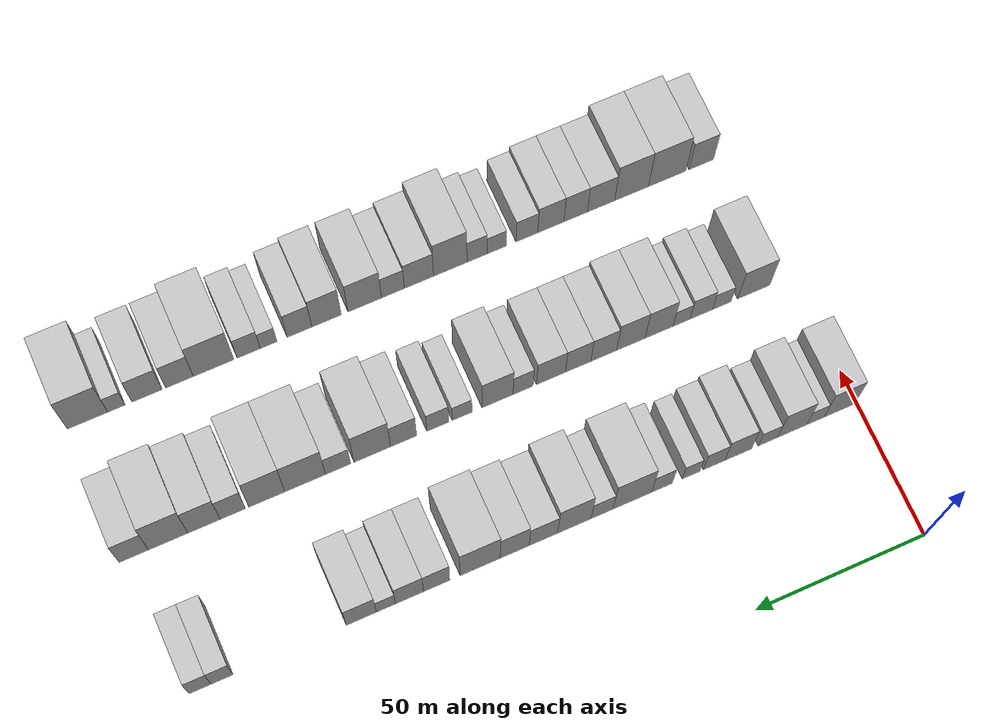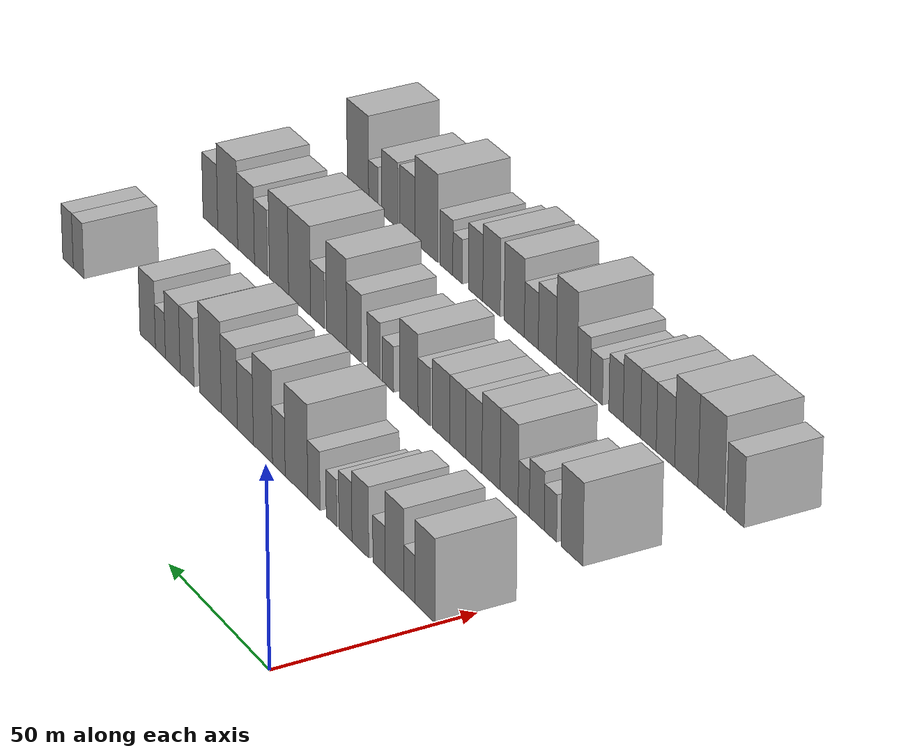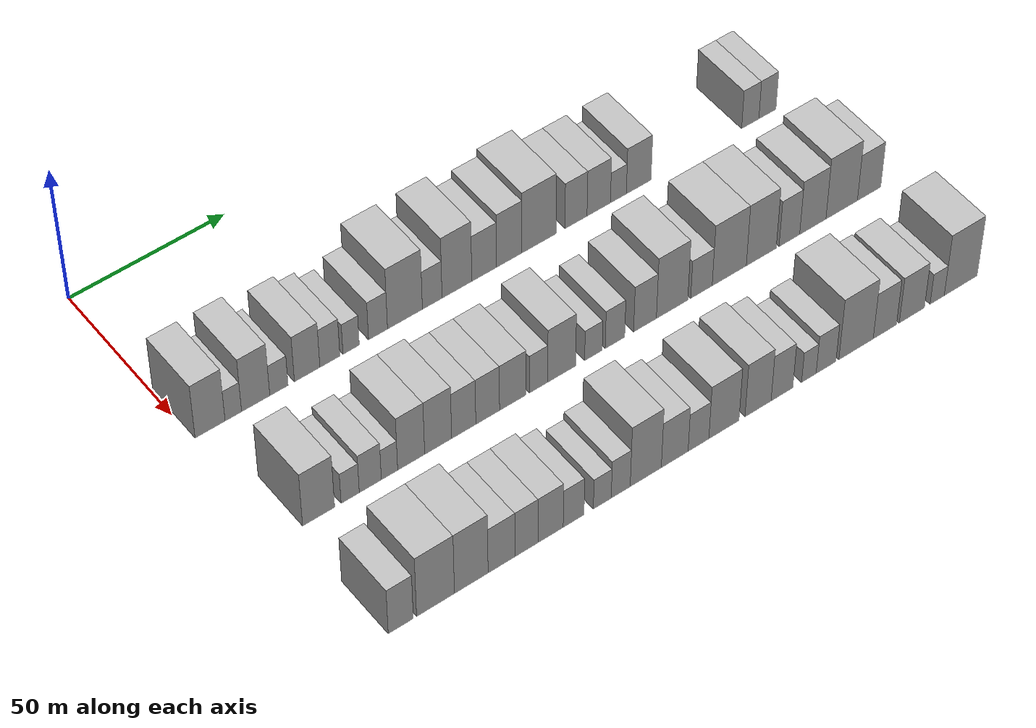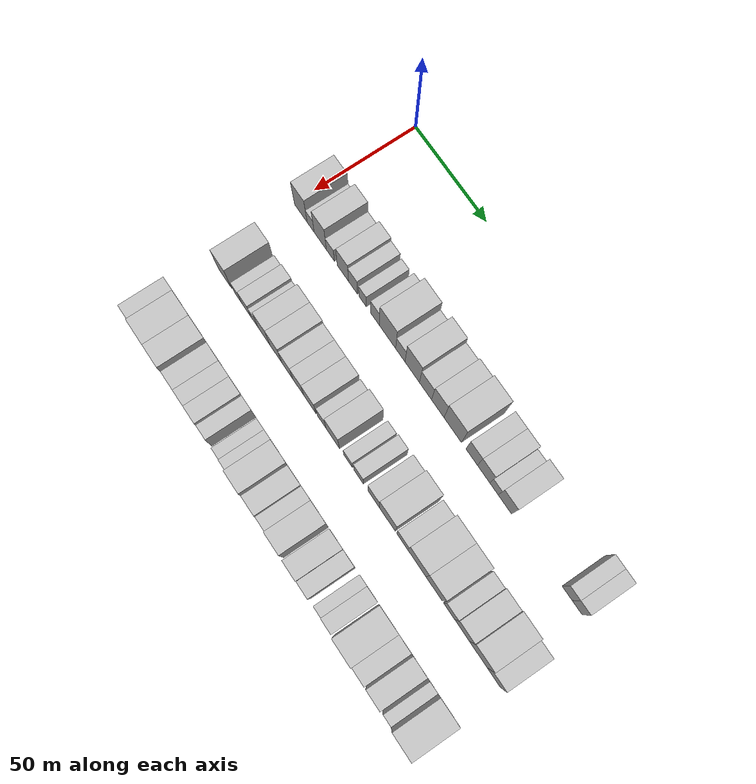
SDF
<sdf version="1.6">
 <world name="default">
  <model name="building_45">
   <static>1</static>
   <pose>50.0000 5.3530 0 0.000000 0.000000 0.000000</pose>
   <link name="link">
    <pose>0 0 10.50 0 0 0</pose>
    <collision name="collision"><geometry><box><size>20.0000 9.3205 21.0000</size></box></geometry></collision>
    <visual name="visual">
     <cast_shadows>0</cast_shadows>
     <geometry><box><size>20.0000 9.3205 21.0000</size></box></geometry>
     <material>
      <script>
       <uri>model://HANNAS_wall/materials/scripts</uri>
       <uri>model://HANNAS_wall/materials/textures</uri>
       <name>vrc/HANNAS_wall</name>
      </script>
     </material>
    </visual>
   </link>
  </model>
  <model name="building_46">
   <static>1</static>
   <pose>50.0000 12.5879 0 0.000000 0.000000 0.000000</pose>
   <link name="link">
    <pose>0 0 6.00 0 0 0</pose>
    <collision name="collision"><geometry><box><size>20.0000 5.1493 12.0000</size></box></geometry></collision>
    <visual name="visual">
     <cast_shadows>0</cast_shadows>
     <geometry><box><size>20.0000 5.1493 12.0000</size></box></geometry>
     <material>
      <script>
       <uri>model://HANNAS_wall/materials/scripts</uri>
       <uri>model://HANNAS_wall/materials/textures</uri>
       <name>vrc/HANNAS_wall</name>
      </script>
     </material>
    </visual>
   </link>
  </model>
  <model name="building_47">
   <static>1</static>
   <pose>50.0000 19.5929 0 0.000000 0.000000 0.000000</pose>
   <link name="link">
    <pose>0 0 10.50 0 0 0</pose>
    <collision name="collision"><geometry><box><size>20.0000 8.8607 21.0000</size></box></geometry></collision>
    <visual name="visual">
     <cast_shadows>0</cast_shadows>
     <geometry><box><size>20.0000 8.8607 21.0000</size></box></geometry>
     <material>
      <script>
       <uri>model://HANNAS_wall/materials/scripts</uri>
       <uri>model://HANNAS_wall/materials/textures</uri>
       <name>vrc/HANNAS_wall</name>
      </script>
     </material>
    </visual>
   </link>
  </model>
  <model name="building_48">
   <static>1</static>
   <pose>50.0000 26.9151 0 0.000000 0.000000 0.000000</pose>
   <link name="link">
    <pose>0 0 6.00 0 0 0</pose>
    <collision name="collision"><geometry><box><size>20.0000 5.7836 12.0000</size></box></geometry></collision>
    <visual name="visual">
     <cast_shadows>0</cast_shadows>
     <geometry><box><size>20.0000 5.7836 12.0000</size></box></geometry>
     <material>
      <script>
       <uri>model://HANNAS_wall/materials/scripts</uri>
       <uri>model://HANNAS_wall/materials/textures</uri>
       <name>vrc/HANNAS_wall</name>
      </script>
     </material>
    </visual>
   </link>
  </model>
  <model name="building_49">
   <static>1</static>
   <pose>50.0000 35.8668 0 0.000000 0.000000 0.000000</pose>
   <link name="link">
    <pose>0 0 9.00 0 0 0</pose>
    <collision name="collision"><geometry><box><size>20.0000 8.1198 18.0000</size></box></geometry></collision>
    <visual name="visual">
     <cast_shadows>0</cast_shadows>
     <geometry><box><size>20.0000 8.1198 18.0000</size></box></geometry>
     <material>
      <script>
       <uri>model://HANNAS_wall/materials/scripts</uri>
       <uri>model://HANNAS_wall/materials/textures</uri>
       <name>vrc/HANNAS_wall</name>
      </script>
     </material>
    </visual>
   </link>
  </model>
  <model name="building_50">
   <static>1</static>
   <pose>50.0000 43.1250 0 0.000000 0.000000 0.000000</pose>
   <link name="link">
    <pose>0 0 7.50 0 0 0</pose>
    <collision name="collision"><geometry><box><size>20.0000 6.3967 15.0000</size></box></geometry></collision>
    <visual name="visual">
     <cast_shadows>0</cast_shadows>
     <geometry><box><size>20.0000 6.3967 15.0000</size></box></geometry>
     <material>
      <script>
       <uri>model://HANNAS_wall/materials/scripts</uri>
       <uri>model://HANNAS_wall/materials/textures</uri>
       <name>vrc/HANNAS_wall</name>
      </script>
     </material>
    </visual>
   </link>
  </model>
  <model name="building_51">
   <static>1</static>
   <pose>50.0000 49.9456 0 0.000000 0.000000 0.000000</pose>
   <link name="link">
    <pose>0 0 6.00 0 0 0</pose>
    <collision name="collision"><geometry><box><size>20.0000 5.2446 12.0000</size></box></geometry></collision>
    <visual name="visual">
     <cast_shadows>0</cast_shadows>
     <geometry><box><size>20.0000 5.2446 12.0000</size></box></geometry>
     <material>
      <script>
       <uri>model://HANNAS_wall/materials/scripts</uri>
       <uri>model://HANNAS_wall/materials/textures</uri>
       <name>vrc/HANNAS_wall</name>
      </script>
     </material>
    </visual>
   </link>
  </model>
  <model name="building_52">
   <static>1</static>
   <pose>50.0000 58.6440 0 0.000000 0.000000 0.000000</pose>
   <link name="link">
    <pose>0 0 7.50 0 0 0</pose>
    <collision name="collision"><geometry><box><size>20.0000 6.1522 15.0000</size></box></geometry></collision>
    <visual name="visual">
     <cast_shadows>0</cast_shadows>
     <geometry><box><size>20.0000 6.1522 15.0000</size></box></geometry>
     <material>
      <script>
       <uri>model://HANNAS_wall/materials/scripts</uri>
       <uri>model://HANNAS_wall/materials/textures</uri>
       <name>vrc/HANNAS_wall</name>
      </script>
     </material>
    </visual>
   </link>
  </model>
  <model name="building_53">
   <static>1</static>
   <pose>50.0000 67.4244 0 0.000000 0.000000 0.000000</pose>
   <link name="link">
    <pose>0 0 12.00 0 0 0</pose>
    <collision name="collision"><geometry><box><size>20.0000 11.4087 24.0000</size></box></geometry></collision>
    <visual name="visual">
     <cast_shadows>0</cast_shadows>
     <geometry><box><size>20.0000 11.4087 24.0000</size></box></geometry>
     <material>
      <script>
       <uri>model://HANNAS_wall/materials/scripts</uri>
       <uri>model://HANNAS_wall/materials/textures</uri>
       <name>vrc/HANNAS_wall</name>
      </script>
     </material>
    </visual>
   </link>
  </model>
  <model name="building_54">
   <static>1</static>
   <pose>50.0000 76.3654 0 0.000000 0.000000 0.000000</pose>
   <link name="link">
    <pose>0 0 7.50 0 0 0</pose>
    <collision name="collision"><geometry><box><size>20.0000 6.4732 15.0000</size></box></geometry></collision>
    <visual name="visual">
     <cast_shadows>0</cast_shadows>
     <geometry><box><size>20.0000 6.4732 15.0000</size></box></geometry>
     <material>
      <script>
       <uri>model://HANNAS_wall/materials/scripts</uri>
       <uri>model://HANNAS_wall/materials/textures</uri>
       <name>vrc/HANNAS_wall</name>
      </script>
     </material>
    </visual>
   </link>
  </model>
  <model name="building_55">
   <static>1</static>
   <pose>50.0000 84.5318 0 0.000000 0.000000 0.000000</pose>
   <link name="link">
    <pose>0 0 12.00 0 0 0</pose>
    <collision name="collision"><geometry><box><size>20.0000 9.8596 24.0000</size></box></geometry></collision>
    <visual name="visual">
     <cast_shadows>0</cast_shadows>
     <geometry><box><size>20.0000 9.8596 24.0000</size></box></geometry>
     <material>
      <script>
       <uri>model://HANNAS_wall/materials/scripts</uri>
       <uri>model://HANNAS_wall/materials/textures</uri>
       <name>vrc/HANNAS_wall</name>
      </script>
     </material>
    </visual>
   </link>
  </model>
  <model name="building_56">
   <static>1</static>
   <pose>50.0000 93.6151 0 0.000000 0.000000 0.000000</pose>
   <link name="link">
    <pose>0 0 9.00 0 0 0</pose>
    <collision name="collision"><geometry><box><size>20.0000 8.3070 18.0000</size></box></geometry></collision>
    <visual name="visual">
     <cast_shadows>0</cast_shadows>
     <geometry><box><size>20.0000 8.3070 18.0000</size></box></geometry>
     <material>
      <script>
       <uri>model://HANNAS_wall/materials/scripts</uri>
       <uri>model://HANNAS_wall/materials/textures</uri>
       <name>vrc/HANNAS_wall</name>
      </script>
     </material>
    </visual>
   </link>
  </model>
  <model name="building_57">
   <static>1</static>
   <pose>50.0000 101.9975 0 0.000000 0.000000 0.000000</pose>
   <link name="link">
    <pose>0 0 10.50 0 0 0</pose>
    <collision name="collision"><geometry><box><size>20.0000 8.4578 21.0000</size></box></geometry></collision>
    <visual name="visual">
     <cast_shadows>0</cast_shadows>
     <geometry><box><size>20.0000 8.4578 21.0000</size></box></geometry>
     <material>
      <script>
       <uri>model://HANNAS_wall/materials/scripts</uri>
       <uri>model://HANNAS_wall/materials/textures</uri>
       <name>vrc/HANNAS_wall</name>
      </script>
     </material>
    </visual>
   </link>
  </model>
  <model name="building_58">
   <static>1</static>
   <pose>50.0000 112.0544 0 0.000000 0.000000 0.000000</pose>
   <link name="link">
    <pose>0 0 12.00 0 0 0</pose>
    <collision name="collision"><geometry><box><size>20.0000 11.6560 24.0000</size></box></geometry></collision>
    <visual name="visual">
     <cast_shadows>0</cast_shadows>
     <geometry><box><size>20.0000 11.6560 24.0000</size></box></geometry>
     <material>
      <script>
       <uri>model://HANNAS_wall/materials/scripts</uri>
       <uri>model://HANNAS_wall/materials/textures</uri>
       <name>vrc/HANNAS_wall</name>
      </script>
     </material>
    </visual>
   </link>
  </model>
  <model name="building_59">
   <static>1</static>
   <pose>50.0000 124.6748 0 0.000000 0.000000 0.000000</pose>
   <link name="link">
    <pose>0 0 9.00 0 0 0</pose>
    <collision name="collision"><geometry><box><size>20.0000 7.5849 18.0000</size></box></geometry></collision>
    <visual name="visual">
     <cast_shadows>0</cast_shadows>
     <geometry><box><size>20.0000 7.5849 18.0000</size></box></geometry>
     <material>
      <script>
       <uri>model://HANNAS_wall/materials/scripts</uri>
       <uri>model://HANNAS_wall/materials/textures</uri>
       <name>vrc/HANNAS_wall</name>
      </script>
     </material>
    </visual>
   </link>
  </model>
  <model name="building_60">
   <static>1</static>
   <pose>50.0000 132.5144 0 0.000000 0.000000 0.000000</pose>
   <link name="link">
    <pose>0 0 9.00 0 0 0</pose>
    <collision name="collision"><geometry><box><size>20.0000 8.0943 18.0000</size></box></geometry></collision>
    <visual name="visual">
     <cast_shadows>0</cast_shadows>
     <geometry><box><size>20.0000 8.0943 18.0000</size></box></geometry>
     <material>
      <script>
       <uri>model://HANNAS_wall/materials/scripts</uri>
       <uri>model://HANNAS_wall/materials/textures</uri>
       <name>vrc/HANNAS_wall</name>
      </script>
     </material>
    </visual>
   </link>
  </model>
  <model name="building_61">
   <static>1</static>
   <pose>50.0000 139.3153 0 0.000000 0.000000 0.000000</pose>
   <link name="link">
    <pose>0 0 6.00 0 0 0</pose>
    <collision name="collision"><geometry><box><size>20.0000 5.5074 12.0000</size></box></geometry></collision>
    <visual name="visual">
     <cast_shadows>0</cast_shadows>
     <geometry><box><size>20.0000 5.5074 12.0000</size></box></geometry>
     <material>
      <script>
       <uri>model://HANNAS_wall/materials/scripts</uri>
       <uri>model://HANNAS_wall/materials/textures</uri>
       <name>vrc/HANNAS_wall</name>
      </script>
     </material>
    </visual>
   </link>
  </model>
  <model name="building_62">
   <static>1</static>
   <pose>50.0000 146.3744 0 0.000000 0.000000 0.000000</pose>
   <link name="link">
    <pose>0 0 9.00 0 0 0</pose>
    <collision name="collision"><geometry><box><size>20.0000 8.6107 18.0000</size></box></geometry></collision>
    <visual name="visual">
     <cast_shadows>0</cast_shadows>
     <geometry><box><size>20.0000 8.6107 18.0000</size></box></geometry>
     <material>
      <script>
       <uri>model://HANNAS_wall/materials/scripts</uri>
       <uri>model://HANNAS_wall/materials/textures</uri>
       <name>vrc/HANNAS_wall</name>
      </script>
     </material>
    </visual>
   </link>
  </model>
  <model name="building_63">
   <static>1</static>
   <pose>50.0000 185.9854 0 0.000000 0.000000 0.000000</pose>
   <link name="link">
    <pose>0 0 7.50 0 0 0</pose>
    <collision name="collision"><geometry><box><size>20.0000 6.2037 15.0000</size></box></geometry></collision>
    <visual name="visual">
     <cast_shadows>0</cast_shadows>
     <geometry><box><size>20.0000 6.2037 15.0000</size></box></geometry>
     <material>
      <script>
       <uri>model://HANNAS_wall/materials/scripts</uri>
       <uri>model://HANNAS_wall/materials/textures</uri>
       <name>vrc/HANNAS_wall</name>
      </script>
     </material>
    </visual>
   </link>
  </model>
  <model name="building_64">
   <static>1</static>
   <pose>50.0000 192.1753 0 0.000000 0.000000 0.000000</pose>
   <link name="link">
    <pose>0 0 7.50 0 0 0</pose>
    <collision name="collision"><geometry><box><size>20.0000 6.1762 15.0000</size></box></geometry></collision>
    <visual name="visual">
     <cast_shadows>0</cast_shadows>
     <geometry><box><size>20.0000 6.1762 15.0000</size></box></geometry>
     <material>
      <script>
       <uri>model://HANNAS_wall/materials/scripts</uri>
       <uri>model://HANNAS_wall/materials/textures</uri>
       <name>vrc/HANNAS_wall</name>
      </script>
     </material>
    </visual>
   </link>
  </model>
  <model name="building_123">
   <static>1</static>
   <pose>90.0000 11.7126 0 0.000000 0.000000 0.000000</pose>
   <link name="link">
    <pose>0 0 10.50 0 0 0</pose>
    <collision name="collision"><geometry><box><size>20.0000 9.8920 21.0000</size></box></geometry></collision>
    <visual name="visual">
     <cast_shadows>0</cast_shadows>
     <geometry><box><size>20.0000 9.8920 21.0000</size></box></geometry>
     <material>
      <script>
       <uri>model://HANNAS_wall/materials/scripts</uri>
       <uri>model://HANNAS_wall/materials/textures</uri>
       <name>vrc/HANNAS_wall</name>
      </script>
     </material>
    </visual>
   </link>
  </model>
  <model name="building_124">
   <static>1</static>
   <pose>90.0000 21.4859 0 0.000000 0.000000 0.000000</pose>
   <link name="link">
    <pose>0 0 6.00 0 0 0</pose>
    <collision name="collision"><geometry><box><size>20.0000 5.6545 12.0000</size></box></geometry></collision>
    <visual name="visual">
     <cast_shadows>0</cast_shadows>
     <geometry><box><size>20.0000 5.6545 12.0000</size></box></geometry>
     <material>
      <script>
       <uri>model://HANNAS_wall/materials/scripts</uri>
       <uri>model://HANNAS_wall/materials/textures</uri>
       <name>vrc/HANNAS_wall</name>
      </script>
     </material>
    </visual>
   </link>
  </model>
  <model name="building_125">
   <static>1</static>
   <pose>90.0000 27.7591 0 0.000000 0.000000 0.000000</pose>
   <link name="link">
    <pose>0 0 7.50 0 0 0</pose>
    <collision name="collision"><geometry><box><size>20.0000 6.8920 15.0000</size></box></geometry></collision>
    <visual name="visual">
     <cast_shadows>0</cast_shadows>
     <geometry><box><size>20.0000 6.8920 15.0000</size></box></geometry>
     <material>
      <script>
       <uri>model://HANNAS_wall/materials/scripts</uri>
       <uri>model://HANNAS_wall/materials/textures</uri>
       <name>vrc/HANNAS_wall</name>
      </script>
     </material>
    </visual>
   </link>
  </model>
  <model name="building_126">
   <static>1</static>
   <pose>90.0000 33.7719 0 0.000000 0.000000 0.000000</pose>
   <link name="link">
    <pose>0 0 6.00 0 0 0</pose>
    <collision name="collision"><geometry><box><size>20.0000 5.1335 12.0000</size></box></geometry></collision>
    <visual name="visual">
     <cast_shadows>0</cast_shadows>
     <geometry><box><size>20.0000 5.1335 12.0000</size></box></geometry>
     <material>
      <script>
       <uri>model://HANNAS_wall/materials/scripts</uri>
       <uri>model://HANNAS_wall/materials/textures</uri>
       <name>vrc/HANNAS_wall</name>
      </script>
     </material>
    </visual>
   </link>
  </model>
  <model name="building_127">
   <static>1</static>
   <pose>90.0000 40.6064 0 0.000000 0.000000 0.000000</pose>
   <link name="link">
    <pose>0 0 10.50 0 0 0</pose>
    <collision name="collision"><geometry><box><size>20.0000 8.5354 21.0000</size></box></geometry></collision>
    <visual name="visual">
     <cast_shadows>0</cast_shadows>
     <geometry><box><size>20.0000 8.5354 21.0000</size></box></geometry>
     <material>
      <script>
       <uri>model://HANNAS_wall/materials/scripts</uri>
       <uri>model://HANNAS_wall/materials/textures</uri>
       <name>vrc/HANNAS_wall</name>
      </script>
     </material>
    </visual>
   </link>
  </model>
  <model name="building_128">
   <static>1</static>
   <pose>90.0000 49.1750 0 0.000000 0.000000 0.000000</pose>
   <link name="link">
    <pose>0 0 10.50 0 0 0</pose>
    <collision name="collision"><geometry><box><size>20.0000 8.6019 21.0000</size></box></geometry></collision>
    <visual name="visual">
     <cast_shadows>0</cast_shadows>
     <geometry><box><size>20.0000 8.6019 21.0000</size></box></geometry>
     <material>
      <script>
       <uri>model://HANNAS_wall/materials/scripts</uri>
       <uri>model://HANNAS_wall/materials/textures</uri>
       <name>vrc/HANNAS_wall</name>
      </script>
     </material>
    </visual>
   </link>
  </model>
  <model name="building_129">
   <static>1</static>
   <pose>90.0000 57.3554 0 0.000000 0.000000 0.000000</pose>
   <link name="link">
    <pose>0 0 9.00 0 0 0</pose>
    <collision name="collision"><geometry><box><size>20.0000 7.7589 18.0000</size></box></geometry></collision>
    <visual name="visual">
     <cast_shadows>0</cast_shadows>
     <geometry><box><size>20.0000 7.7589 18.0000</size></box></geometry>
     <material>
      <script>
       <uri>model://HANNAS_wall/materials/scripts</uri>
       <uri>model://HANNAS_wall/materials/textures</uri>
       <name>vrc/HANNAS_wall</name>
      </script>
     </material>
    </visual>
   </link>
  </model>
  <model name="building_130">
   <static>1</static>
   <pose>90.0000 65.0699 0 0.000000 0.000000 0.000000</pose>
   <link name="link">
    <pose>0 0 9.00 0 0 0</pose>
    <collision name="collision"><geometry><box><size>20.0000 7.6700 18.0000</size></box></geometry></collision>
    <visual name="visual">
     <cast_shadows>0</cast_shadows>
     <geometry><box><size>20.0000 7.6700 18.0000</size></box></geometry>
     <material>
      <script>
       <uri>model://HANNAS_wall/materials/scripts</uri>
       <uri>model://HANNAS_wall/materials/textures</uri>
       <name>vrc/HANNAS_wall</name>
      </script>
     </material>
    </visual>
   </link>
  </model>
  <model name="building_131">
   <static>1</static>
   <pose>90.0000 73.2366 0 0.000000 0.000000 0.000000</pose>
   <link name="link">
    <pose>0 0 9.00 0 0 0</pose>
    <collision name="collision"><geometry><box><size>20.0000 8.6634 18.0000</size></box></geometry></collision>
    <visual name="visual">
     <cast_shadows>0</cast_shadows>
     <geometry><box><size>20.0000 8.6634 18.0000</size></box></geometry>
     <material>
      <script>
       <uri>model://HANNAS_wall/materials/scripts</uri>
       <uri>model://HANNAS_wall/materials/textures</uri>
       <name>vrc/HANNAS_wall</name>
      </script>
     </material>
    </visual>
   </link>
  </model>
  <model name="building_132">
   <static>1</static>
   <pose>90.0000 81.5780 0 0.000000 0.000000 0.000000</pose>
   <link name="link">
    <pose>0 0 7.50 0 0 0</pose>
    <collision name="collision"><geometry><box><size>20.0000 6.0194 15.0000</size></box></geometry></collision>
    <visual name="visual">
     <cast_shadows>0</cast_shadows>
     <geometry><box><size>20.0000 6.0194 15.0000</size></box></geometry>
     <material>
      <script>
       <uri>model://HANNAS_wall/materials/scripts</uri>
       <uri>model://HANNAS_wall/materials/textures</uri>
       <name>vrc/HANNAS_wall</name>
      </script>
     </material>
    </visual>
   </link>
  </model>
  <model name="building_133">
   <static>1</static>
   <pose>90.0000 89.1979 0 0.000000 0.000000 0.000000</pose>
   <link name="link">
    <pose>0 0 10.50 0 0 0</pose>
    <collision name="collision"><geometry><box><size>20.0000 9.2203 21.0000</size></box></geometry></collision>
    <visual name="visual">
     <cast_shadows>0</cast_shadows>
     <geometry><box><size>20.0000 9.2203 21.0000</size></box></geometry>
     <material>
      <script>
       <uri>model://HANNAS_wall/materials/scripts</uri>
       <uri>model://HANNAS_wall/materials/textures</uri>
       <name>vrc/HANNAS_wall</name>
      </script>
     </material>
    </visual>
   </link>
  </model>
  <model name="building_134">
   <static>1</static>
   <pose>90.0000 99.7313 0 0.000000 0.000000 0.000000</pose>
   <link name="link">
    <pose>0 0 6.00 0 0 0</pose>
    <collision name="collision"><geometry><box><size>20.0000 5.8465 12.0000</size></box></geometry></collision>
    <visual name="visual">
     <cast_shadows>0</cast_shadows>
     <geometry><box><size>20.0000 5.8465 12.0000</size></box></geometry>
     <material>
      <script>
       <uri>model://HANNAS_wall/materials/scripts</uri>
       <uri>model://HANNAS_wall/materials/textures</uri>
       <name>vrc/HANNAS_wall</name>
      </script>
     </material>
    </visual>
   </link>
  </model>
  <model name="building_135">
   <static>1</static>
   <pose>90.0000 106.9139 0 0.000000 0.000000 0.000000</pose>
   <link name="link">
    <pose>0 0 7.50 0 0 0</pose>
    <collision name="collision"><geometry><box><size>20.0000 6.5187 15.0000</size></box></geometry></collision>
    <visual name="visual">
     <cast_shadows>0</cast_shadows>
     <geometry><box><size>20.0000 6.5187 15.0000</size></box></geometry>
     <material>
      <script>
       <uri>model://HANNAS_wall/materials/scripts</uri>
       <uri>model://HANNAS_wall/materials/textures</uri>
       <name>vrc/HANNAS_wall</name>
      </script>
     </material>
    </visual>
   </link>
  </model>
  <model name="building_136">
   <static>1</static>
   <pose>90.0000 117.0229 0 0.000000 0.000000 0.000000</pose>
   <link name="link">
    <pose>0 0 9.00 0 0 0</pose>
    <collision name="collision"><geometry><box><size>20.0000 7.6993 18.0000</size></box></geometry></collision>
    <visual name="visual">
     <cast_shadows>0</cast_shadows>
     <geometry><box><size>20.0000 7.6993 18.0000</size></box></geometry>
     <material>
      <script>
       <uri>model://HANNAS_wall/materials/scripts</uri>
       <uri>model://HANNAS_wall/materials/textures</uri>
       <name>vrc/HANNAS_wall</name>
      </script>
     </material>
    </visual>
   </link>
  </model>
  <model name="building_137">
   <static>1</static>
   <pose>90.0000 126.2163 0 0.000000 0.000000 0.000000</pose>
   <link name="link">
    <pose>0 0 12.00 0 0 0</pose>
    <collision name="collision"><geometry><box><size>20.0000 10.6875 24.0000</size></box></geometry></collision>
    <visual name="visual">
     <cast_shadows>0</cast_shadows>
     <geometry><box><size>20.0000 10.6875 24.0000</size></box></geometry>
     <material>
      <script>
       <uri>model://HANNAS_wall/materials/scripts</uri>
       <uri>model://HANNAS_wall/materials/textures</uri>
       <name>vrc/HANNAS_wall</name>
      </script>
     </material>
    </visual>
   </link>
  </model>
  <model name="building_138">
   <static>1</static>
   <pose>90.0000 136.2413 0 0.000000 0.000000 0.000000</pose>
   <link name="link">
    <pose>0 0 7.50 0 0 0</pose>
    <collision name="collision"><geometry><box><size>20.0000 7.3627 15.0000</size></box></geometry></collision>
    <visual name="visual">
     <cast_shadows>0</cast_shadows>
     <geometry><box><size>20.0000 7.3627 15.0000</size></box></geometry>
     <material>
      <script>
       <uri>model://HANNAS_wall/materials/scripts</uri>
       <uri>model://HANNAS_wall/materials/textures</uri>
       <name>vrc/HANNAS_wall</name>
      </script>
     </material>
    </visual>
   </link>
  </model>
  <model name="building_139">
   <static>1</static>
   <pose>90.0000 145.8304 0 0.000000 0.000000 0.000000</pose>
   <link name="link">
    <pose>0 0 12.00 0 0 0</pose>
    <collision name="collision"><geometry><box><size>20.0000 11.8154 24.0000</size></box></geometry></collision>
    <visual name="visual">
     <cast_shadows>0</cast_shadows>
     <geometry><box><size>20.0000 11.8154 24.0000</size></box></geometry>
     <material>
      <script>
       <uri>model://HANNAS_wall/materials/scripts</uri>
       <uri>model://HANNAS_wall/materials/textures</uri>
       <name>vrc/HANNAS_wall</name>
      </script>
     </material>
    </visual>
   </link>
  </model>
  <model name="building_140">
   <static>1</static>
   <pose>90.0000 156.9617 0 0.000000 0.000000 0.000000</pose>
   <link name="link">
    <pose>0 0 12.00 0 0 0</pose>
    <collision name="collision"><geometry><box><size>20.0000 10.4473 24.0000</size></box></geometry></collision>
    <visual name="visual">
     <cast_shadows>0</cast_shadows>
     <geometry><box><size>20.0000 10.4473 24.0000</size></box></geometry>
     <material>
      <script>
       <uri>model://HANNAS_wall/materials/scripts</uri>
       <uri>model://HANNAS_wall/materials/textures</uri>
       <name>vrc/HANNAS_wall</name>
      </script>
     </material>
    </visual>
   </link>
  </model>
  <model name="building_141">
   <static>1</static>
   <pose>90.0000 166.8057 0 0.000000 0.000000 0.000000</pose>
   <link name="link">
    <pose>0 0 9.00 0 0 0</pose>
    <collision name="collision"><geometry><box><size>20.0000 7.2407 18.0000</size></box></geometry></collision>
    <visual name="visual">
     <cast_shadows>0</cast_shadows>
     <geometry><box><size>20.0000 7.2407 18.0000</size></box></geometry>
     <material>
      <script>
       <uri>model://HANNAS_wall/materials/scripts</uri>
       <uri>model://HANNAS_wall/materials/textures</uri>
       <name>vrc/HANNAS_wall</name>
      </script>
     </material>
    </visual>
   </link>
  </model>
  <model name="building_142">
   <static>1</static>
   <pose>90.0000 175.0848 0 0.000000 0.000000 0.000000</pose>
   <link name="link">
    <pose>0 0 10.50 0 0 0</pose>
    <collision name="collision"><geometry><box><size>20.0000 9.3175 21.0000</size></box></geometry></collision>
    <visual name="visual">
     <cast_shadows>0</cast_shadows>
     <geometry><box><size>20.0000 9.3175 21.0000</size></box></geometry>
     <material>
      <script>
       <uri>model://HANNAS_wall/materials/scripts</uri>
       <uri>model://HANNAS_wall/materials/textures</uri>
       <name>vrc/HANNAS_wall</name>
      </script>
     </material>
    </visual>
   </link>
  </model>
  <model name="building_143">
   <static>1</static>
   <pose>90.0000 185.3721 0 0.000000 0.000000 0.000000</pose>
   <link name="link">
    <pose>0 0 12.00 0 0 0</pose>
    <collision name="collision"><geometry><box><size>20.0000 11.2571 24.0000</size></box></geometry></collision>
    <visual name="visual">
     <cast_shadows>0</cast_shadows>
     <geometry><box><size>20.0000 11.2571 24.0000</size></box></geometry>
     <material>
      <script>
       <uri>model://HANNAS_wall/materials/scripts</uri>
       <uri>model://HANNAS_wall/materials/textures</uri>
       <name>vrc/HANNAS_wall</name>
      </script>
     </material>
    </visual>
   </link>
  </model>
  <model name="building_144">
   <static>1</static>
   <pose>90.0000 195.2008 0 0.000000 0.000000 0.000000</pose>
   <link name="link">
    <pose>0 0 9.00 0 0 0</pose>
    <collision name="collision"><geometry><box><size>20.0000 8.4003 18.0000</size></box></geometry></collision>
    <visual name="visual">
     <cast_shadows>0</cast_shadows>
     <geometry><box><size>20.0000 8.4003 18.0000</size></box></geometry>
     <material>
      <script>
       <uri>model://HANNAS_wall/materials/scripts</uri>
       <uri>model://HANNAS_wall/materials/textures</uri>
       <name>vrc/HANNAS_wall</name>
      </script>
     </material>
    </visual>
   </link>
  </model>
  <model name="building_211">
   <static>1</static>
   <pose>130.0000 8.5926 0 0.000000 0.000000 0.000000</pose>
   <link name="link">
    <pose>0 0 9.00 0 0 0</pose>
    <collision name="collision"><geometry><box><size>20.0000 7.6254 18.0000</size></box></geometry></collision>
    <visual name="visual">
     <cast_shadows>0</cast_shadows>
     <geometry><box><size>20.0000 7.6254 18.0000</size></box></geometry>
     <material>
      <script>
       <uri>model://HANNAS_wall/materials/scripts</uri>
       <uri>model://HANNAS_wall/materials/textures</uri>
       <name>vrc/HANNAS_wall</name>
      </script>
     </material>
    </visual>
   </link>
  </model>
  <model name="building_212">
   <static>1</static>
   <pose>130.0000 19.2182 0 0.000000 0.000000 0.000000</pose>
   <link name="link">
    <pose>0 0 12.00 0 0 0</pose>
    <collision name="collision"><geometry><box><size>20.0000 11.6257 24.0000</size></box></geometry></collision>
    <visual name="visual">
     <cast_shadows>0</cast_shadows>
     <geometry><box><size>20.0000 11.6257 24.0000</size></box></geometry>
     <material>
      <script>
       <uri>model://HANNAS_wall/materials/scripts</uri>
       <uri>model://HANNAS_wall/materials/textures</uri>
       <name>vrc/HANNAS_wall</name>
      </script>
     </material>
    </visual>
   </link>
  </model>
  <model name="building_213">
   <static>1</static>
   <pose>130.0000 30.2491 0 0.000000 0.000000 0.000000</pose>
   <link name="link">
    <pose>0 0 12.00 0 0 0</pose>
    <collision name="collision"><geometry><box><size>20.0000 10.4361 24.0000</size></box></geometry></collision>
    <visual name="visual">
     <cast_shadows>0</cast_shadows>
     <geometry><box><size>20.0000 10.4361 24.0000</size></box></geometry>
     <material>
      <script>
       <uri>model://HANNAS_wall/materials/scripts</uri>
       <uri>model://HANNAS_wall/materials/textures</uri>
       <name>vrc/HANNAS_wall</name>
      </script>
     </material>
    </visual>
   </link>
  </model>
  <model name="building_214">
   <static>1</static>
   <pose>130.0000 39.6682 0 0.000000 0.000000 0.000000</pose>
   <link name="link">
    <pose>0 0 9.00 0 0 0</pose>
    <collision name="collision"><geometry><box><size>20.0000 8.4023 18.0000</size></box></geometry></collision>
    <visual name="visual">
     <cast_shadows>0</cast_shadows>
     <geometry><box><size>20.0000 8.4023 18.0000</size></box></geometry>
     <material>
      <script>
       <uri>model://HANNAS_wall/materials/scripts</uri>
       <uri>model://HANNAS_wall/materials/textures</uri>
       <name>vrc/HANNAS_wall</name>
      </script>
     </material>
    </visual>
   </link>
  </model>
  <model name="building_215">
   <static>1</static>
   <pose>130.0000 47.4897 0 0.000000 0.000000 0.000000</pose>
   <link name="link">
    <pose>0 0 9.00 0 0 0</pose>
    <collision name="collision"><geometry><box><size>20.0000 7.2406 18.0000</size></box></geometry></collision>
    <visual name="visual">
     <cast_shadows>0</cast_shadows>
     <geometry><box><size>20.0000 7.2406 18.0000</size></box></geometry>
     <material>
      <script>
       <uri>model://HANNAS_wall/materials/scripts</uri>
       <uri>model://HANNAS_wall/materials/textures</uri>
       <name>vrc/HANNAS_wall</name>
      </script>
     </material>
    </visual>
   </link>
  </model>
  <model name="building_216">
   <static>1</static>
   <pose>130.0000 55.1090 0 0.000000 0.000000 0.000000</pose>
   <link name="link">
    <pose>0 0 9.00 0 0 0</pose>
    <collision name="collision"><geometry><box><size>20.0000 7.9981 18.0000</size></box></geometry></collision>
    <visual name="visual">
     <cast_shadows>0</cast_shadows>
     <geometry><box><size>20.0000 7.9981 18.0000</size></box></geometry>
     <material>
      <script>
       <uri>model://HANNAS_wall/materials/scripts</uri>
       <uri>model://HANNAS_wall/materials/textures</uri>
       <name>vrc/HANNAS_wall</name>
      </script>
     </material>
    </visual>
   </link>
  </model>
  <model name="building_217">
   <static>1</static>
   <pose>130.0000 62.4308 0 0.000000 0.000000 0.000000</pose>
   <link name="link">
    <pose>0 0 7.50 0 0 0</pose>
    <collision name="collision"><geometry><box><size>20.0000 6.6455 15.0000</size></box></geometry></collision>
    <visual name="visual">
     <cast_shadows>0</cast_shadows>
     <geometry><box><size>20.0000 6.6455 15.0000</size></box></geometry>
     <material>
      <script>
       <uri>model://HANNAS_wall/materials/scripts</uri>
       <uri>model://HANNAS_wall/materials/textures</uri>
       <name>vrc/HANNAS_wall</name>
      </script>
     </material>
    </visual>
   </link>
  </model>
  <model name="building_218">
   <static>1</static>
   <pose>130.0000 71.6276 0 0.000000 0.000000 0.000000</pose>
   <link name="link">
    <pose>0 0 6.00 0 0 0</pose>
    <collision name="collision"><geometry><box><size>20.0000 5.7482 12.0000</size></box></geometry></collision>
    <visual name="visual">
     <cast_shadows>0</cast_shadows>
     <geometry><box><size>20.0000 5.7482 12.0000</size></box></geometry>
     <material>
      <script>
       <uri>model://HANNAS_wall/materials/scripts</uri>
       <uri>model://HANNAS_wall/materials/textures</uri>
       <name>vrc/HANNAS_wall</name>
      </script>
     </material>
    </visual>
   </link>
  </model>
  <model name="building_219">
   <static>1</static>
   <pose>130.0000 77.5711 0 0.000000 0.000000 0.000000</pose>
   <link name="link">
    <pose>0 0 7.50 0 0 0</pose>
    <collision name="collision"><geometry><box><size>20.0000 6.1387 15.0000</size></box></geometry></collision>
    <visual name="visual">
     <cast_shadows>0</cast_shadows>
     <geometry><box><size>20.0000 6.1387 15.0000</size></box></geometry>
     <material>
      <script>
       <uri>model://HANNAS_wall/materials/scripts</uri>
       <uri>model://HANNAS_wall/materials/textures</uri>
       <name>vrc/HANNAS_wall</name>
      </script>
     </material>
    </visual>
   </link>
  </model>
  <model name="building_220">
   <static>1</static>
   <pose>130.0000 85.7038 0 0.000000 0.000000 0.000000</pose>
   <link name="link">
    <pose>0 0 12.00 0 0 0</pose>
    <collision name="collision"><geometry><box><size>20.0000 10.1268 24.0000</size></box></geometry></collision>
    <visual name="visual">
     <cast_shadows>0</cast_shadows>
     <geometry><box><size>20.0000 10.1268 24.0000</size></box></geometry>
     <material>
      <script>
       <uri>model://HANNAS_wall/materials/scripts</uri>
       <uri>model://HANNAS_wall/materials/textures</uri>
       <name>vrc/HANNAS_wall</name>
      </script>
     </material>
    </visual>
   </link>
  </model>
  <model name="building_221">
   <static>1</static>
   <pose>130.0000 95.1640 0 0.000000 0.000000 0.000000</pose>
   <link name="link">
    <pose>0 0 9.00 0 0 0</pose>
    <collision name="collision"><geometry><box><size>20.0000 8.7936 18.0000</size></box></geometry></collision>
    <visual name="visual">
     <cast_shadows>0</cast_shadows>
     <geometry><box><size>20.0000 8.7936 18.0000</size></box></geometry>
     <material>
      <script>
       <uri>model://HANNAS_wall/materials/scripts</uri>
       <uri>model://HANNAS_wall/materials/textures</uri>
       <name>vrc/HANNAS_wall</name>
      </script>
     </material>
    </visual>
   </link>
  </model>
  <model name="building_222">
   <static>1</static>
   <pose>130.0000 102.9941 0 0.000000 0.000000 0.000000</pose>
   <link name="link">
    <pose>0 0 7.50 0 0 0</pose>
    <collision name="collision"><geometry><box><size>20.0000 6.8666 15.0000</size></box></geometry></collision>
    <visual name="visual">
     <cast_shadows>0</cast_shadows>
     <geometry><box><size>20.0000 6.8666 15.0000</size></box></geometry>
     <material>
      <script>
       <uri>model://HANNAS_wall/materials/scripts</uri>
       <uri>model://HANNAS_wall/materials/textures</uri>
       <name>vrc/HANNAS_wall</name>
      </script>
     </material>
    </visual>
   </link>
  </model>
  <model name="building_223">
   <static>1</static>
   <pose>130.0000 111.4446 0 0.000000 0.000000 0.000000</pose>
   <link name="link">
    <pose>0 0 10.50 0 0 0</pose>
    <collision name="collision"><geometry><box><size>20.0000 10.0342 21.0000</size></box></geometry></collision>
    <visual name="visual">
     <cast_shadows>0</cast_shadows>
     <geometry><box><size>20.0000 10.0342 21.0000</size></box></geometry>
     <material>
      <script>
       <uri>model://HANNAS_wall/materials/scripts</uri>
       <uri>model://HANNAS_wall/materials/textures</uri>
       <name>vrc/HANNAS_wall</name>
      </script>
     </material>
    </visual>
   </link>
  </model>
  <model name="building_224">
   <static>1</static>
   <pose>130.0000 122.8557 0 0.000000 0.000000 0.000000</pose>
   <link name="link">
    <pose>0 0 10.50 0 0 0</pose>
    <collision name="collision"><geometry><box><size>20.0000 8.7880 21.0000</size></box></geometry></collision>
    <visual name="visual">
     <cast_shadows>0</cast_shadows>
     <geometry><box><size>20.0000 8.7880 21.0000</size></box></geometry>
     <material>
      <script>
       <uri>model://HANNAS_wall/materials/scripts</uri>
       <uri>model://HANNAS_wall/materials/textures</uri>
       <name>vrc/HANNAS_wall</name>
      </script>
     </material>
    </visual>
   </link>
  </model>
  <model name="building_225">
   <static>1</static>
   <pose>130.0000 130.9299 0 0.000000 0.000000 0.000000</pose>
   <link name="link">
    <pose>0 0 9.00 0 0 0</pose>
    <collision name="collision"><geometry><box><size>20.0000 7.3604 18.0000</size></box></geometry></collision>
    <visual name="visual">
     <cast_shadows>0</cast_shadows>
     <geometry><box><size>20.0000 7.3604 18.0000</size></box></geometry>
     <material>
      <script>
       <uri>model://HANNAS_wall/materials/scripts</uri>
       <uri>model://HANNAS_wall/materials/textures</uri>
       <name>vrc/HANNAS_wall</name>
      </script>
     </material>
    </visual>
   </link>
  </model>
  <model name="building_226">
   <static>1</static>
   <pose>130.0000 140.0920 0 0.000000 0.000000 0.000000</pose>
   <link name="link">
    <pose>0 0 6.00 0 0 0</pose>
    <collision name="collision"><geometry><box><size>20.0000 4.9637 12.0000</size></box></geometry></collision>
    <visual name="visual">
     <cast_shadows>0</cast_shadows>
     <geometry><box><size>20.0000 4.9637 12.0000</size></box></geometry>
     <material>
      <script>
       <uri>model://HANNAS_wall/materials/scripts</uri>
       <uri>model://HANNAS_wall/materials/textures</uri>
       <name>vrc/HANNAS_wall</name>
      </script>
     </material>
    </visual>
   </link>
  </model>
  <model name="building_227">
   <static>1</static>
   <pose>130.0000 145.9719 0 0.000000 0.000000 0.000000</pose>
   <link name="link">
    <pose>0 0 7.50 0 0 0</pose>
    <collision name="collision"><geometry><box><size>20.0000 6.7962 15.0000</size></box></geometry></collision>
    <visual name="visual">
     <cast_shadows>0</cast_shadows>
     <geometry><box><size>20.0000 6.7962 15.0000</size></box></geometry>
     <material>
      <script>
       <uri>model://HANNAS_wall/materials/scripts</uri>
       <uri>model://HANNAS_wall/materials/textures</uri>
       <name>vrc/HANNAS_wall</name>
      </script>
     </material>
    </visual>
   </link>
  </model>
  <model name="building_228">
   <static>1</static>
   <pose>130.0000 156.3134 0 0.000000 0.000000 0.000000</pose>
   <link name="link">
    <pose>0 0 12.00 0 0 0</pose>
    <collision name="collision"><geometry><box><size>20.0000 11.8868 24.0000</size></box></geometry></collision>
    <visual name="visual">
     <cast_shadows>0</cast_shadows>
     <geometry><box><size>20.0000 11.8868 24.0000</size></box></geometry>
     <material>
      <script>
       <uri>model://HANNAS_wall/materials/scripts</uri>
       <uri>model://HANNAS_wall/materials/textures</uri>
       <name>vrc/HANNAS_wall</name>
      </script>
     </material>
    </visual>
   </link>
  </model>
  <model name="building_229">
   <static>1</static>
   <pose>130.0000 166.3251 0 0.000000 0.000000 0.000000</pose>
   <link name="link">
    <pose>0 0 9.00 0 0 0</pose>
    <collision name="collision"><geometry><box><size>20.0000 8.1365 18.0000</size></box></geometry></collision>
    <visual name="visual">
     <cast_shadows>0</cast_shadows>
     <geometry><box><size>20.0000 8.1365 18.0000</size></box></geometry>
     <material>
      <script>
       <uri>model://HANNAS_wall/materials/scripts</uri>
       <uri>model://HANNAS_wall/materials/textures</uri>
       <name>vrc/HANNAS_wall</name>
      </script>
     </material>
    </visual>
   </link>
  </model>
  <model name="building_230">
   <static>1</static>
   <pose>130.0000 175.8093 0 0.000000 0.000000 0.000000</pose>
   <link name="link">
    <pose>0 0 9.00 0 0 0</pose>
    <collision name="collision"><geometry><box><size>20.0000 8.8318 18.0000</size></box></geometry></collision>
    <visual name="visual">
     <cast_shadows>0</cast_shadows>
     <geometry><box><size>20.0000 8.8318 18.0000</size></box></geometry>
     <material>
      <script>
       <uri>model://HANNAS_wall/materials/scripts</uri>
       <uri>model://HANNAS_wall/materials/textures</uri>
       <name>vrc/HANNAS_wall</name>
      </script>
     </material>
    </visual>
   </link>
  </model>
  <model name="building_231">
   <static>1</static>
   <pose>130.0000 184.7403 0 0.000000 0.000000 0.000000</pose>
   <link name="link">
    <pose>0 0 6.00 0 0 0</pose>
    <collision name="collision"><geometry><box><size>20.0000 5.0303 12.0000</size></box></geometry></collision>
    <visual name="visual">
     <cast_shadows>0</cast_shadows>
     <geometry><box><size>20.0000 5.0303 12.0000</size></box></geometry>
     <material>
      <script>
       <uri>model://HANNAS_wall/materials/scripts</uri>
       <uri>model://HANNAS_wall/materials/textures</uri>
       <name>vrc/HANNAS_wall</name>
      </script>
     </material>
    </visual>
   </link>
  </model>
  <model name="building_232">
   <static>1</static>
   <pose>130.0000 193.1150 0 0.000000 0.000000 0.000000</pose>
   <link name="link">
    <pose>0 0 12.00 0 0 0</pose>
    <collision name="collision"><geometry><box><size>20.0000 11.7191 24.0000</size></box></geometry></collision>
    <visual name="visual">
     <cast_shadows>0</cast_shadows>
     <geometry><box><size>20.0000 11.7191 24.0000</size></box></geometry>
     <material>
      <script>
       <uri>model://HANNAS_wall/materials/scripts</uri>
       <uri>model://HANNAS_wall/materials/textures</uri>
       <name>vrc/HANNAS_wall</name>
      </script>
     </material>
    </visual>
   </link>
  </model>
 </world>
</sdf>
